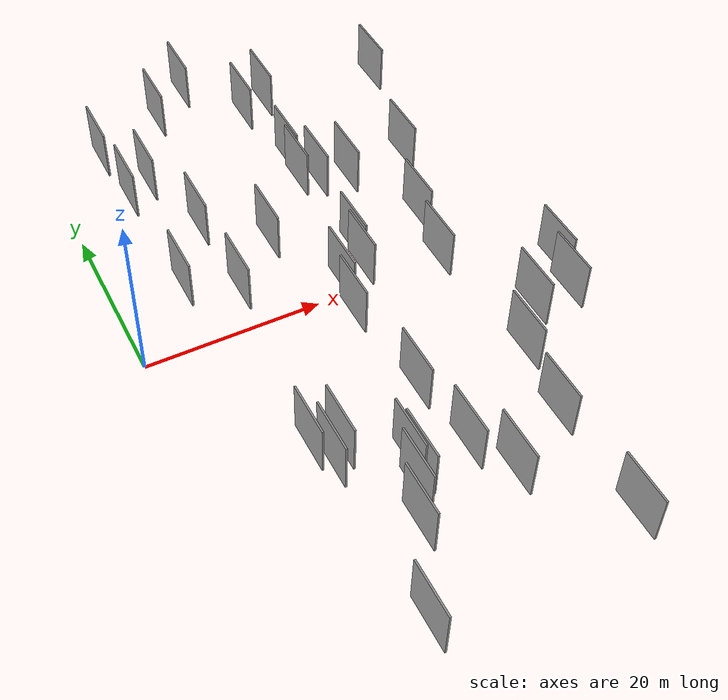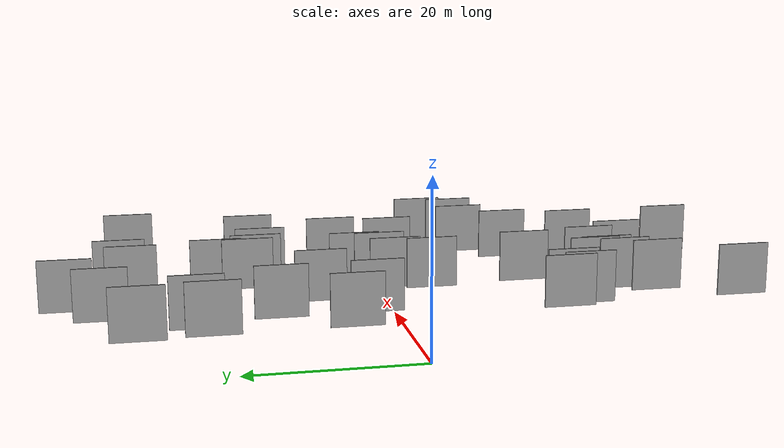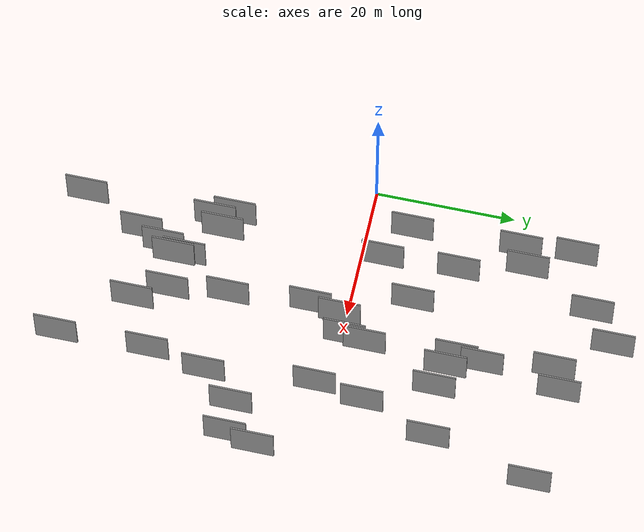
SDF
<sdf version="1.6">
 <world name="default">
  <scene>
   <sky><clouds><speed>12</speed></clouds></sky>
   <ambient>0.4 0.4 0.4 1</ambient>
   <background>0.7 0.7 0.7 1</background>
   <shadows>1</shadows>
  </scene>
  <gravity>0 0 -9.8066</gravity>
  <magnetic_field>6e-06 2.3e-05 -4.2e-05</magnetic_field>
  <physics default="0" name="default_physics" type="ode">
   <ode>
    <solver>
     <type>quick</type>
     <iters>10</iters>
     <sor>1.0</sor>
     <use_dynamic_moi_rescaling>0</use_dynamic_moi_rescaling>
    </solver>
    <constraints>
     <cfm>0</cfm>
     <erp>0.2</erp>
     <contact_max_correcting_vel>100</contact_max_correcting_vel>
     <contact_surface_layer>0.001</contact_surface_layer>
    </constraints>
   </ode>
   <max_step_size>0.004</max_step_size>
   <real_time_factor>1</real_time_factor>
   <real_time_update_rate>250</real_time_update_rate>
  </physics>
  <light name="sun" type="directional">
   <pose>0 0 10 0 0 0</pose>
   <diffuse>0.8 0.8 0.8 1</diffuse>
   <specular>0.2 0.2 0.2 1</specular>
   <attenuation>
    <range>1000</range>
    <constant>0.9</constant>
    <linear>0.01</linear>
    <quadratic>0.001</quadratic>
   </attenuation>
   <direction>-0.5 0.1 -0.9</direction>
  </light>
  <model name="grey_wall_1">
   <static>1</static>
   <pose>21.6564 -4.8141 2.5 0.000000 0.000000 1.570796</pose>
   <link name="link">
    <pose>0 0 3.00 0 0 0</pose>
    <collision name="collision"><geometry><box><size>6.00 0.2 6.00</size></box></geometry></collision>
    <visual name="visual">
     <cast_shadows>0</cast_shadows>
     <geometry><box><size>6.00 0.2 6.00</size></box></geometry>
     <material>
      <script>
       <uri>model://grey_wall/materials/scripts</uri>
       <uri>model://grey_wall/materials/textures</uri>
       <name>vrc/grey_wall</name>
      </script>
     </material>
    </visual>
   </link>
  </model>
  <model name="grey_wall_2">
   <static>1</static>
   <pose>23.6089 -24.8356 2.5 0.000000 0.000000 1.570796</pose>
   <link name="link">
    <pose>0 0 3.00 0 0 0</pose>
    <collision name="collision"><geometry><box><size>6.00 0.2 6.00</size></box></geometry></collision>
    <visual name="visual">
     <cast_shadows>0</cast_shadows>
     <geometry><box><size>6.00 0.2 6.00</size></box></geometry>
     <material>
      <script>
       <uri>model://grey_wall/materials/scripts</uri>
       <uri>model://grey_wall/materials/textures</uri>
       <name>vrc/grey_wall</name>
      </script>
     </material>
    </visual>
   </link>
  </model>
  <model name="grey_wall_3">
   <static>1</static>
   <pose>24.3874 30.1782 2.5 0.000000 0.000000 1.570796</pose>
   <link name="link">
    <pose>0 0 3.00 0 0 0</pose>
    <collision name="collision"><geometry><box><size>6.00 0.2 6.00</size></box></geometry></collision>
    <visual name="visual">
     <cast_shadows>0</cast_shadows>
     <geometry><box><size>6.00 0.2 6.00</size></box></geometry>
     <material>
      <script>
       <uri>model://grey_wall/materials/scripts</uri>
       <uri>model://grey_wall/materials/textures</uri>
       <name>vrc/grey_wall</name>
      </script>
     </material>
    </visual>
   </link>
  </model>
  <model name="grey_wall_4">
   <static>1</static>
   <pose>11.1376 -39.4858 2.5 0.000000 0.000000 1.570796</pose>
   <link name="link">
    <pose>0 0 3.00 0 0 0</pose>
    <collision name="collision"><geometry><box><size>6.00 0.2 6.00</size></box></geometry></collision>
    <visual name="visual">
     <cast_shadows>0</cast_shadows>
     <geometry><box><size>6.00 0.2 6.00</size></box></geometry>
     <material>
      <script>
       <uri>model://grey_wall/materials/scripts</uri>
       <uri>model://grey_wall/materials/textures</uri>
       <name>vrc/grey_wall</name>
      </script>
     </material>
    </visual>
   </link>
  </model>
  <model name="grey_wall_5">
   <static>1</static>
   <pose>12.3010 3.4274 2.5 0.000000 0.000000 1.570796</pose>
   <link name="link">
    <pose>0 0 3.00 0 0 0</pose>
    <collision name="collision"><geometry><box><size>6.00 0.2 6.00</size></box></geometry></collision>
    <visual name="visual">
     <cast_shadows>0</cast_shadows>
     <geometry><box><size>6.00 0.2 6.00</size></box></geometry>
     <material>
      <script>
       <uri>model://grey_wall/materials/scripts</uri>
       <uri>model://grey_wall/materials/textures</uri>
       <name>vrc/grey_wall</name>
      </script>
     </material>
    </visual>
   </link>
  </model>
  <model name="grey_wall_6">
   <static>1</static>
   <pose>25.7499 20.3218 2.5 0.000000 0.000000 1.570796</pose>
   <link name="link">
    <pose>0 0 3.00 0 0 0</pose>
    <collision name="collision"><geometry><box><size>6.00 0.2 6.00</size></box></geometry></collision>
    <visual name="visual">
     <cast_shadows>0</cast_shadows>
     <geometry><box><size>6.00 0.2 6.00</size></box></geometry>
     <material>
      <script>
       <uri>model://grey_wall/materials/scripts</uri>
       <uri>model://grey_wall/materials/textures</uri>
       <name>vrc/grey_wall</name>
      </script>
     </material>
    </visual>
   </link>
  </model>
  <model name="grey_wall_7">
   <static>1</static>
   <pose>30.7164 14.5984 2.5 0.000000 0.000000 1.570796</pose>
   <link name="link">
    <pose>0 0 3.00 0 0 0</pose>
    <collision name="collision"><geometry><box><size>6.00 0.2 6.00</size></box></geometry></collision>
    <visual name="visual">
     <cast_shadows>0</cast_shadows>
     <geometry><box><size>6.00 0.2 6.00</size></box></geometry>
     <material>
      <script>
       <uri>model://grey_wall/materials/scripts</uri>
       <uri>model://grey_wall/materials/textures</uri>
       <name>vrc/grey_wall</name>
      </script>
     </material>
    </visual>
   </link>
  </model>
  <model name="grey_wall_8">
   <static>1</static>
   <pose>33.6135 -1.6067 2.5 0.000000 0.000000 1.570796</pose>
   <link name="link">
    <pose>0 0 3.00 0 0 0</pose>
    <collision name="collision"><geometry><box><size>6.00 0.2 6.00</size></box></geometry></collision>
    <visual name="visual">
     <cast_shadows>0</cast_shadows>
     <geometry><box><size>6.00 0.2 6.00</size></box></geometry>
     <material>
      <script>
       <uri>model://grey_wall/materials/scripts</uri>
       <uri>model://grey_wall/materials/textures</uri>
       <name>vrc/grey_wall</name>
      </script>
     </material>
    </visual>
   </link>
  </model>
  <model name="grey_wall_9">
   <static>1</static>
   <pose>15.2111 -30.5434 2.5 0.000000 0.000000 1.570796</pose>
   <link name="link">
    <pose>0 0 3.00 0 0 0</pose>
    <collision name="collision"><geometry><box><size>6.00 0.2 6.00</size></box></geometry></collision>
    <visual name="visual">
     <cast_shadows>0</cast_shadows>
     <geometry><box><size>6.00 0.2 6.00</size></box></geometry>
     <material>
      <script>
       <uri>model://grey_wall/materials/scripts</uri>
       <uri>model://grey_wall/materials/textures</uri>
       <name>vrc/grey_wall</name>
      </script>
     </material>
    </visual>
   </link>
  </model>
  <model name="grey_wall_10">
   <static>1</static>
   <pose>26.0335 3.7698 2.5 0.000000 0.000000 1.570796</pose>
   <link name="link">
    <pose>0 0 3.00 0 0 0</pose>
    <collision name="collision"><geometry><box><size>6.00 0.2 6.00</size></box></geometry></collision>
    <visual name="visual">
     <cast_shadows>0</cast_shadows>
     <geometry><box><size>6.00 0.2 6.00</size></box></geometry>
     <material>
      <script>
       <uri>model://grey_wall/materials/scripts</uri>
       <uri>model://grey_wall/materials/textures</uri>
       <name>vrc/grey_wall</name>
      </script>
     </material>
    </visual>
   </link>
  </model>
  <model name="grey_wall_11">
   <static>1</static>
   <pose>38.3754 15.3484 2.5 0.000000 0.000000 1.570796</pose>
   <link name="link">
    <pose>0 0 3.00 0 0 0</pose>
    <collision name="collision"><geometry><box><size>6.00 0.2 6.00</size></box></geometry></collision>
    <visual name="visual">
     <cast_shadows>0</cast_shadows>
     <geometry><box><size>6.00 0.2 6.00</size></box></geometry>
     <material>
      <script>
       <uri>model://grey_wall/materials/scripts</uri>
       <uri>model://grey_wall/materials/textures</uri>
       <name>vrc/grey_wall</name>
      </script>
     </material>
    </visual>
   </link>
  </model>
  <model name="grey_wall_12">
   <static>1</static>
   <pose>33.4478 -25.3198 2.5 0.000000 0.000000 1.570796</pose>
   <link name="link">
    <pose>0 0 3.00 0 0 0</pose>
    <collision name="collision"><geometry><box><size>6.00 0.2 6.00</size></box></geometry></collision>
    <visual name="visual">
     <cast_shadows>0</cast_shadows>
     <geometry><box><size>6.00 0.2 6.00</size></box></geometry>
     <material>
      <script>
       <uri>model://grey_wall/materials/scripts</uri>
       <uri>model://grey_wall/materials/textures</uri>
       <name>vrc/grey_wall</name>
      </script>
     </material>
    </visual>
   </link>
  </model>
  <model name="grey_wall_13">
   <static>1</static>
   <pose>16.8244 -27.0574 2.5 0.000000 0.000000 1.570796</pose>
   <link name="link">
    <pose>0 0 3.00 0 0 0</pose>
    <collision name="collision"><geometry><box><size>6.00 0.2 6.00</size></box></geometry></collision>
    <visual name="visual">
     <cast_shadows>0</cast_shadows>
     <geometry><box><size>6.00 0.2 6.00</size></box></geometry>
     <material>
      <script>
       <uri>model://grey_wall/materials/scripts</uri>
       <uri>model://grey_wall/materials/textures</uri>
       <name>vrc/grey_wall</name>
      </script>
     </material>
    </visual>
   </link>
  </model>
  <model name="grey_wall_14">
   <static>1</static>
   <pose>34.9005 5.3373 2.5 0.000000 0.000000 1.570796</pose>
   <link name="link">
    <pose>0 0 3.00 0 0 0</pose>
    <collision name="collision"><geometry><box><size>6.00 0.2 6.00</size></box></geometry></collision>
    <visual name="visual">
     <cast_shadows>0</cast_shadows>
     <geometry><box><size>6.00 0.2 6.00</size></box></geometry>
     <material>
      <script>
       <uri>model://grey_wall/materials/scripts</uri>
       <uri>model://grey_wall/materials/textures</uri>
       <name>vrc/grey_wall</name>
      </script>
     </material>
    </visual>
   </link>
  </model>
  <model name="grey_wall_15">
   <static>1</static>
   <pose>35.0174 -16.9787 2.5 0.000000 0.000000 1.570796</pose>
   <link name="link">
    <pose>0 0 3.00 0 0 0</pose>
    <collision name="collision"><geometry><box><size>6.00 0.2 6.00</size></box></geometry></collision>
    <visual name="visual">
     <cast_shadows>0</cast_shadows>
     <geometry><box><size>6.00 0.2 6.00</size></box></geometry>
     <material>
      <script>
       <uri>model://grey_wall/materials/scripts</uri>
       <uri>model://grey_wall/materials/textures</uri>
       <name>vrc/grey_wall</name>
      </script>
     </material>
    </visual>
   </link>
  </model>
  <model name="grey_wall_16">
   <static>1</static>
   <pose>7.0432 6.5565 2.5 0.000000 0.000000 1.570796</pose>
   <link name="link">
    <pose>0 0 3.00 0 0 0</pose>
    <collision name="collision"><geometry><box><size>6.00 0.2 6.00</size></box></geometry></collision>
    <visual name="visual">
     <cast_shadows>0</cast_shadows>
     <geometry><box><size>6.00 0.2 6.00</size></box></geometry>
     <material>
      <script>
       <uri>model://grey_wall/materials/scripts</uri>
       <uri>model://grey_wall/materials/textures</uri>
       <name>vrc/grey_wall</name>
      </script>
     </material>
    </visual>
   </link>
  </model>
  <model name="grey_wall_17">
   <static>1</static>
   <pose>6.6634 21.9982 2.5 0.000000 0.000000 1.570796</pose>
   <link name="link">
    <pose>0 0 3.00 0 0 0</pose>
    <collision name="collision"><geometry><box><size>6.00 0.2 6.00</size></box></geometry></collision>
    <visual name="visual">
     <cast_shadows>0</cast_shadows>
     <geometry><box><size>6.00 0.2 6.00</size></box></geometry>
     <material>
      <script>
       <uri>model://grey_wall/materials/scripts</uri>
       <uri>model://grey_wall/materials/textures</uri>
       <name>vrc/grey_wall</name>
      </script>
     </material>
    </visual>
   </link>
  </model>
  <model name="grey_wall_18">
   <static>1</static>
   <pose>33.5962 -38.3231 2.5 0.000000 0.000000 1.570796</pose>
   <link name="link">
    <pose>0 0 3.00 0 0 0</pose>
    <collision name="collision"><geometry><box><size>6.00 0.2 6.00</size></box></geometry></collision>
    <visual name="visual">
     <cast_shadows>0</cast_shadows>
     <geometry><box><size>6.00 0.2 6.00</size></box></geometry>
     <material>
      <script>
       <uri>model://grey_wall/materials/scripts</uri>
       <uri>model://grey_wall/materials/textures</uri>
       <name>vrc/grey_wall</name>
      </script>
     </material>
    </visual>
   </link>
  </model>
  <model name="grey_wall_19">
   <static>1</static>
   <pose>12.0188 14.1910 2.5 0.000000 0.000000 1.570796</pose>
   <link name="link">
    <pose>0 0 3.00 0 0 0</pose>
    <collision name="collision"><geometry><box><size>6.00 0.2 6.00</size></box></geometry></collision>
    <visual name="visual">
     <cast_shadows>0</cast_shadows>
     <geometry><box><size>6.00 0.2 6.00</size></box></geometry>
     <material>
      <script>
       <uri>model://grey_wall/materials/scripts</uri>
       <uri>model://grey_wall/materials/textures</uri>
       <name>vrc/grey_wall</name>
      </script>
     </material>
    </visual>
   </link>
  </model>
  <model name="grey_wall_20">
   <static>1</static>
   <pose>22.4846 -0.5427 2.5 0.000000 0.000000 1.570796</pose>
   <link name="link">
    <pose>0 0 3.00 0 0 0</pose>
    <collision name="collision"><geometry><box><size>6.00 0.2 6.00</size></box></geometry></collision>
    <visual name="visual">
     <cast_shadows>0</cast_shadows>
     <geometry><box><size>6.00 0.2 6.00</size></box></geometry>
     <material>
      <script>
       <uri>model://grey_wall/materials/scripts</uri>
       <uri>model://grey_wall/materials/textures</uri>
       <name>vrc/grey_wall</name>
      </script>
     </material>
    </visual>
   </link>
  </model>
  <model name="grey_wall_21">
   <static>1</static>
   <pose>18.1652 8.9519 2.5 0.000000 0.000000 1.570796</pose>
   <link name="link">
    <pose>0 0 3.00 0 0 0</pose>
    <collision name="collision"><geometry><box><size>6.00 0.2 6.00</size></box></geometry></collision>
    <visual name="visual">
     <cast_shadows>0</cast_shadows>
     <geometry><box><size>6.00 0.2 6.00</size></box></geometry>
     <material>
      <script>
       <uri>model://grey_wall/materials/scripts</uri>
       <uri>model://grey_wall/materials/textures</uri>
       <name>vrc/grey_wall</name>
      </script>
     </material>
    </visual>
   </link>
  </model>
  <model name="grey_wall_22">
   <static>1</static>
   <pose>22.6454 -16.4097 2.5 0.000000 0.000000 1.570796</pose>
   <link name="link">
    <pose>0 0 3.00 0 0 0</pose>
    <collision name="collision"><geometry><box><size>6.00 0.2 6.00</size></box></geometry></collision>
    <visual name="visual">
     <cast_shadows>0</cast_shadows>
     <geometry><box><size>6.00 0.2 6.00</size></box></geometry>
     <material>
      <script>
       <uri>model://grey_wall/materials/scripts</uri>
       <uri>model://grey_wall/materials/textures</uri>
       <name>vrc/grey_wall</name>
      </script>
     </material>
    </visual>
   </link>
  </model>
  <model name="grey_wall_23">
   <static>1</static>
   <pose>39.0228 -12.1820 2.5 0.000000 0.000000 1.570796</pose>
   <link name="link">
    <pose>0 0 3.00 0 0 0</pose>
    <collision name="collision"><geometry><box><size>6.00 0.2 6.00</size></box></geometry></collision>
    <visual name="visual">
     <cast_shadows>0</cast_shadows>
     <geometry><box><size>6.00 0.2 6.00</size></box></geometry>
     <material>
      <script>
       <uri>model://grey_wall/materials/scripts</uri>
       <uri>model://grey_wall/materials/textures</uri>
       <name>vrc/grey_wall</name>
      </script>
     </material>
    </visual>
   </link>
  </model>
  <model name="grey_wall_24">
   <static>1</static>
   <pose>44.7174 -7.8020 2.5 0.000000 0.000000 1.570796</pose>
   <link name="link">
    <pose>0 0 3.00 0 0 0</pose>
    <collision name="collision"><geometry><box><size>6.00 0.2 6.00</size></box></geometry></collision>
    <visual name="visual">
     <cast_shadows>0</cast_shadows>
     <geometry><box><size>6.00 0.2 6.00</size></box></geometry>
     <material>
      <script>
       <uri>model://grey_wall/materials/scripts</uri>
       <uri>model://grey_wall/materials/textures</uri>
       <name>vrc/grey_wall</name>
      </script>
     </material>
    </visual>
   </link>
  </model>
  <model name="grey_wall_25">
   <static>1</static>
   <pose>25.5493 0.8286 2.5 0.000000 0.000000 1.570796</pose>
   <link name="link">
    <pose>0 0 3.00 0 0 0</pose>
    <collision name="collision"><geometry><box><size>6.00 0.2 6.00</size></box></geometry></collision>
    <visual name="visual">
     <cast_shadows>0</cast_shadows>
     <geometry><box><size>6.00 0.2 6.00</size></box></geometry>
     <material>
      <script>
       <uri>model://grey_wall/materials/scripts</uri>
       <uri>model://grey_wall/materials/textures</uri>
       <name>vrc/grey_wall</name>
      </script>
     </material>
    </visual>
   </link>
  </model>
  <model name="grey_wall_26">
   <static>1</static>
   <pose>27.6216 31.4727 2.5 0.000000 0.000000 1.570796</pose>
   <link name="link">
    <pose>0 0 3.00 0 0 0</pose>
    <collision name="collision"><geometry><box><size>6.00 0.2 6.00</size></box></geometry></collision>
    <visual name="visual">
     <cast_shadows>0</cast_shadows>
     <geometry><box><size>6.00 0.2 6.00</size></box></geometry>
     <material>
      <script>
       <uri>model://grey_wall/materials/scripts</uri>
       <uri>model://grey_wall/materials/textures</uri>
       <name>vrc/grey_wall</name>
      </script>
     </material>
    </visual>
   </link>
  </model>
  <model name="grey_wall_27">
   <static>1</static>
   <pose>19.1207 37.4407 2.5 0.000000 0.000000 1.570796</pose>
   <link name="link">
    <pose>0 0 3.00 0 0 0</pose>
    <collision name="collision"><geometry><box><size>6.00 0.2 6.00</size></box></geometry></collision>
    <visual name="visual">
     <cast_shadows>0</cast_shadows>
     <geometry><box><size>6.00 0.2 6.00</size></box></geometry>
     <material>
      <script>
       <uri>model://grey_wall/materials/scripts</uri>
       <uri>model://grey_wall/materials/textures</uri>
       <name>vrc/grey_wall</name>
      </script>
     </material>
    </visual>
   </link>
  </model>
  <model name="grey_wall_28">
   <static>1</static>
   <pose>18.1913 -25.2845 2.5 0.000000 0.000000 1.570796</pose>
   <link name="link">
    <pose>0 0 3.00 0 0 0</pose>
    <collision name="collision"><geometry><box><size>6.00 0.2 6.00</size></box></geometry></collision>
    <visual name="visual">
     <cast_shadows>0</cast_shadows>
     <geometry><box><size>6.00 0.2 6.00</size></box></geometry>
     <material>
      <script>
       <uri>model://grey_wall/materials/scripts</uri>
       <uri>model://grey_wall/materials/textures</uri>
       <name>vrc/grey_wall</name>
      </script>
     </material>
    </visual>
   </link>
  </model>
  <model name="grey_wall_29">
   <static>1</static>
   <pose>27.2976 15.4693 2.5 0.000000 0.000000 1.570796</pose>
   <link name="link">
    <pose>0 0 3.00 0 0 0</pose>
    <collision name="collision"><geometry><box><size>6.00 0.2 6.00</size></box></geometry></collision>
    <visual name="visual">
     <cast_shadows>0</cast_shadows>
     <geometry><box><size>6.00 0.2 6.00</size></box></geometry>
     <material>
      <script>
       <uri>model://grey_wall/materials/scripts</uri>
       <uri>model://grey_wall/materials/textures</uri>
       <name>vrc/grey_wall</name>
      </script>
     </material>
    </visual>
   </link>
  </model>
  <model name="grey_wall_30">
   <static>1</static>
   <pose>25.3436 16.6248 2.5 0.000000 0.000000 1.570796</pose>
   <link name="link">
    <pose>0 0 3.00 0 0 0</pose>
    <collision name="collision"><geometry><box><size>6.00 0.2 6.00</size></box></geometry></collision>
    <visual name="visual">
     <cast_shadows>0</cast_shadows>
     <geometry><box><size>6.00 0.2 6.00</size></box></geometry>
     <material>
      <script>
       <uri>model://grey_wall/materials/scripts</uri>
       <uri>model://grey_wall/materials/textures</uri>
       <name>vrc/grey_wall</name>
      </script>
     </material>
    </visual>
   </link>
  </model>
  <model name="grey_wall_31">
   <static>1</static>
   <pose>41.9429 30.1540 2.5 0.000000 0.000000 1.570796</pose>
   <link name="link">
    <pose>0 0 3.00 0 0 0</pose>
    <collision name="collision"><geometry><box><size>6.00 0.2 6.00</size></box></geometry></collision>
    <visual name="visual">
     <cast_shadows>0</cast_shadows>
     <geometry><box><size>6.00 0.2 6.00</size></box></geometry>
     <material>
      <script>
       <uri>model://grey_wall/materials/scripts</uri>
       <uri>model://grey_wall/materials/textures</uri>
       <name>vrc/grey_wall</name>
      </script>
     </material>
    </visual>
   </link>
  </model>
  <model name="grey_wall_32">
   <static>1</static>
   <pose>14.5074 33.6364 2.5 0.000000 0.000000 1.570796</pose>
   <link name="link">
    <pose>0 0 3.00 0 0 0</pose>
    <collision name="collision"><geometry><box><size>6.00 0.2 6.00</size></box></geometry></collision>
    <visual name="visual">
     <cast_shadows>0</cast_shadows>
     <geometry><box><size>6.00 0.2 6.00</size></box></geometry>
     <material>
      <script>
       <uri>model://grey_wall/materials/scripts</uri>
       <uri>model://grey_wall/materials/textures</uri>
       <name>vrc/grey_wall</name>
      </script>
     </material>
    </visual>
   </link>
  </model>
  <model name="grey_wall_33">
   <static>1</static>
   <pose>11.1427 -20.9336 2.5 0.000000 0.000000 1.570796</pose>
   <link name="link">
    <pose>0 0 3.00 0 0 0</pose>
    <collision name="collision"><geometry><box><size>6.00 0.2 6.00</size></box></geometry></collision>
    <visual name="visual">
     <cast_shadows>0</cast_shadows>
     <geometry><box><size>6.00 0.2 6.00</size></box></geometry>
     <material>
      <script>
       <uri>model://grey_wall/materials/scripts</uri>
       <uri>model://grey_wall/materials/textures</uri>
       <name>vrc/grey_wall</name>
      </script>
     </material>
    </visual>
   </link>
  </model>
  <model name="grey_wall_34">
   <static>1</static>
   <pose>26.1523 -29.3011 2.5 0.000000 0.000000 1.570796</pose>
   <link name="link">
    <pose>0 0 3.00 0 0 0</pose>
    <collision name="collision"><geometry><box><size>6.00 0.2 6.00</size></box></geometry></collision>
    <visual name="visual">
     <cast_shadows>0</cast_shadows>
     <geometry><box><size>6.00 0.2 6.00</size></box></geometry>
     <material>
      <script>
       <uri>model://grey_wall/materials/scripts</uri>
       <uri>model://grey_wall/materials/textures</uri>
       <name>vrc/grey_wall</name>
      </script>
     </material>
    </visual>
   </link>
  </model>
  <model name="grey_wall_35">
   <static>1</static>
   <pose>12.7742 -19.4776 2.5 0.000000 0.000000 1.570796</pose>
   <link name="link">
    <pose>0 0 3.00 0 0 0</pose>
    <collision name="collision"><geometry><box><size>6.00 0.2 6.00</size></box></geometry></collision>
    <visual name="visual">
     <cast_shadows>0</cast_shadows>
     <geometry><box><size>6.00 0.2 6.00</size></box></geometry>
     <material>
      <script>
       <uri>model://grey_wall/materials/scripts</uri>
       <uri>model://grey_wall/materials/textures</uri>
       <name>vrc/grey_wall</name>
      </script>
     </material>
    </visual>
   </link>
  </model>
  <model name="grey_wall_36">
   <static>1</static>
   <pose>10.0520 -18.3025 2.5 0.000000 0.000000 1.570796</pose>
   <link name="link">
    <pose>0 0 3.00 0 0 0</pose>
    <collision name="collision"><geometry><box><size>6.00 0.2 6.00</size></box></geometry></collision>
    <visual name="visual">
     <cast_shadows>0</cast_shadows>
     <geometry><box><size>6.00 0.2 6.00</size></box></geometry>
     <material>
      <script>
       <uri>model://grey_wall/materials/scripts</uri>
       <uri>model://grey_wall/materials/textures</uri>
       <name>vrc/grey_wall</name>
      </script>
     </material>
    </visual>
   </link>
  </model>
  <model name="grey_wall_37">
   <static>1</static>
   <pose>17.8450 -23.7618 2.5 0.000000 0.000000 1.570796</pose>
   <link name="link">
    <pose>0 0 3.00 0 0 0</pose>
    <collision name="collision"><geometry><box><size>6.00 0.2 6.00</size></box></geometry></collision>
    <visual name="visual">
     <cast_shadows>0</cast_shadows>
     <geometry><box><size>6.00 0.2 6.00</size></box></geometry>
     <material>
      <script>
       <uri>model://grey_wall/materials/scripts</uri>
       <uri>model://grey_wall/materials/textures</uri>
       <name>vrc/grey_wall</name>
      </script>
     </material>
    </visual>
   </link>
  </model>
  <model name="grey_wall_38">
   <static>1</static>
   <pose>6.0754 29.8785 2.5 0.000000 0.000000 1.570796</pose>
   <link name="link">
    <pose>0 0 3.00 0 0 0</pose>
    <collision name="collision"><geometry><box><size>6.00 0.2 6.00</size></box></geometry></collision>
    <visual name="visual">
     <cast_shadows>0</cast_shadows>
     <geometry><box><size>6.00 0.2 6.00</size></box></geometry>
     <material>
      <script>
       <uri>model://grey_wall/materials/scripts</uri>
       <uri>model://grey_wall/materials/textures</uri>
       <name>vrc/grey_wall</name>
      </script>
     </material>
    </visual>
   </link>
  </model>
  <model name="grey_wall_39">
   <static>1</static>
   <pose>9.5306 23.5429 2.5 0.000000 0.000000 1.570796</pose>
   <link name="link">
    <pose>0 0 3.00 0 0 0</pose>
    <collision name="collision"><geometry><box><size>6.00 0.2 6.00</size></box></geometry></collision>
    <visual name="visual">
     <cast_shadows>0</cast_shadows>
     <geometry><box><size>6.00 0.2 6.00</size></box></geometry>
     <material>
      <script>
       <uri>model://grey_wall/materials/scripts</uri>
       <uri>model://grey_wall/materials/textures</uri>
       <name>vrc/grey_wall</name>
      </script>
     </material>
    </visual>
   </link>
  </model>
  <model name="grey_wall_40">
   <static>1</static>
   <pose>43.6938 -11.8852 2.5 0.000000 0.000000 1.570796</pose>
   <link name="link">
    <pose>0 0 3.00 0 0 0</pose>
    <collision name="collision"><geometry><box><size>6.00 0.2 6.00</size></box></geometry></collision>
    <visual name="visual">
     <cast_shadows>0</cast_shadows>
     <geometry><box><size>6.00 0.2 6.00</size></box></geometry>
     <material>
      <script>
       <uri>model://grey_wall/materials/scripts</uri>
       <uri>model://grey_wall/materials/textures</uri>
       <name>vrc/grey_wall</name>
      </script>
     </material>
    </visual>
   </link>
  </model>
 </world>
</sdf>
